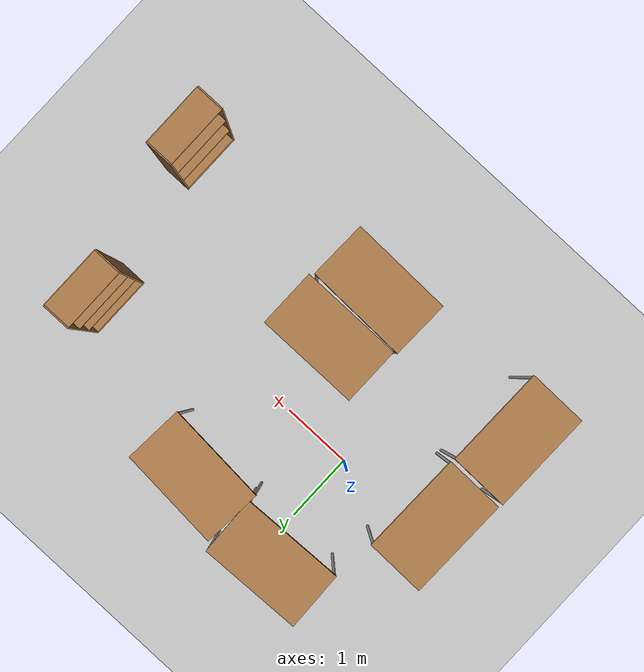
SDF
<sdf version="1.6">
 <world name="default">
  <model name="ground_plane">
   <static>1</static>
   <link name="link">
    <collision name="collision">
     <geometry><plane><normal>0 0 1</normal><size>100 100</size></plane></geometry>
     <surface><friction><ode><mu>100</mu><mu2>50</mu2></ode></friction></surface>
    </collision>
    <visual name="visual">
     <cast_shadows>0</cast_shadows>
     <geometry><plane><normal>0 0 1</normal><size>100 100</size></plane></geometry>
     <material>
      <script><uri>file://media/materials/scripts/gazebo.material</uri><name>Gazebo/Grey</name></script>
     </material>
    </visual>
   </link>
  </model>
  <model name="bookshelf_clone">
   <static>1</static>
   <link name="link">
    <inertial><mass>1</mass></inertial>
    <collision name="back">
     <pose>0 0.005 0.6 0 -0 0</pose>
     <geometry><box><size>0.9 0.01 1.2</size></box></geometry>
    </collision>
    <visual name="visual1">
     <pose>0 0.005 0.6 0 -0 0</pose>
     <geometry><box><size>0.9 0.01 1.2</size></box></geometry>
     <material>
      <script><uri>file://media/materials/scripts/gazebo.material</uri><name>Gazebo/Wood</name></script>
     </material>
    </visual>
    <collision name="left_side">
     <pose>0.45 -0.195 0.6 0 -0 0</pose>
     <geometry><box><size>0.02 0.4 1.2</size></box></geometry>
    </collision>
    <visual name="visual2">
     <pose>0.45 -0.195 0.6 0 -0 0</pose>
     <geometry><box><size>0.02 0.4 1.2</size></box></geometry>
     <material>
      <script><uri>file://media/materials/scripts/gazebo.material</uri><name>Gazebo/Wood</name></script>
     </material>
    </visual>
    <collision name="right_side">
     <pose>-0.45 -0.195 0.6 0 -0 0</pose>
     <geometry><box><size>0.02 0.4 1.2</size></box></geometry>
    </collision>
    <visual name="visual3">
     <pose>-0.45 -0.195 0.6 0 -0 0</pose>
     <geometry><box><size>0.02 0.4 1.2</size></box></geometry>
     <material>
      <script><uri>file://media/materials/scripts/gazebo.material</uri><name>Gazebo/Wood</name></script>
     </material>
    </visual>
    <collision name="bottom">
     <pose>0 -0.195 0.03 0 -0 0</pose>
     <geometry><box><size>0.88 0.4 0.06</size></box></geometry>
    </collision>
    <visual name="visual4">
     <pose>0 -0.195 0.03 0 -0 0</pose>
     <geometry><box><size>0.88 0.4 0.06</size></box></geometry>
     <material>
      <script><uri>file://media/materials/scripts/gazebo.material</uri><name>Gazebo/Wood</name></script>
     </material>
    </visual>
    <collision name="top">
     <pose>0 -0.195 1.19 0 -0 0</pose>
     <geometry><box><size>0.88 0.4 0.02</size></box></geometry>
    </collision>
    <visual name="visual5">
     <pose>0 -0.195 1.19 0 -0 0</pose>
     <geometry><box><size>0.88 0.4 0.02</size></box></geometry>
     <material>
      <script><uri>file://media/materials/scripts/gazebo.material</uri><name>Gazebo/Wood</name></script>
     </material>
    </visual>
    <collision name="low_shelf">
     <pose>0 -0.195 0.43 0 -0 0</pose>
     <geometry><box><size>0.88 0.4 0.02</size></box></geometry>
    </collision>
    <visual name="visual6">
     <pose>0 -0.195 0.43 0 -0 0</pose>
     <geometry><box><size>0.88 0.4 0.02</size></box></geometry>
     <material>
      <script><uri>file://media/materials/scripts/gazebo.material</uri><name>Gazebo/Wood</name></script>
     </material>
    </visual>
    <collision name="high_shelf">
     <pose>0 -0.195 0.8 0 -0 0</pose>
     <geometry><box><size>0.88 0.4 0.02</size></box></geometry>
    </collision>
    <visual name="visual7">
     <pose>0 -0.195 0.8 0 -0 0</pose>
     <geometry><box><size>0.88 0.4 0.02</size></box></geometry>
     <material>
      <script><uri>file://media/materials/scripts/gazebo.material</uri><name>Gazebo/Wood</name></script>
     </material>
    </visual>
   </link>
   <pose>4.43144 -1.72002 0 0 0 -1.56896</pose>
  </model>
  <model name="bookshelf_clone_clone_1">
   <static>1</static>
   <link name="link">
    <inertial><mass>1</mass></inertial>
    <collision name="back">
     <pose>0 0.005 0.6 0 -0 0</pose>
     <geometry><box><size>0.9 0.01 1.2</size></box></geometry>
    </collision>
    <visual name="visual1">
     <pose>0 0.005 0.6 0 -0 0</pose>
     <geometry><box><size>0.9 0.01 1.2</size></box></geometry>
     <material>
      <script><uri>file://media/materials/scripts/gazebo.material</uri><name>Gazebo/Wood</name></script>
     </material>
    </visual>
    <collision name="left_side">
     <pose>0.45 -0.195 0.6 0 -0 0</pose>
     <geometry><box><size>0.02 0.4 1.2</size></box></geometry>
    </collision>
    <visual name="visual2">
     <pose>0.45 -0.195 0.6 0 -0 0</pose>
     <geometry><box><size>0.02 0.4 1.2</size></box></geometry>
     <material>
      <script><uri>file://media/materials/scripts/gazebo.material</uri><name>Gazebo/Wood</name></script>
     </material>
    </visual>
    <collision name="right_side">
     <pose>-0.45 -0.195 0.6 0 -0 0</pose>
     <geometry><box><size>0.02 0.4 1.2</size></box></geometry>
    </collision>
    <visual name="visual3">
     <pose>-0.45 -0.195 0.6 0 -0 0</pose>
     <geometry><box><size>0.02 0.4 1.2</size></box></geometry>
     <material>
      <script><uri>file://media/materials/scripts/gazebo.material</uri><name>Gazebo/Wood</name></script>
     </material>
    </visual>
    <collision name="bottom">
     <pose>0 -0.195 0.03 0 -0 0</pose>
     <geometry><box><size>0.88 0.4 0.06</size></box></geometry>
    </collision>
    <visual name="visual4">
     <pose>0 -0.195 0.03 0 -0 0</pose>
     <geometry><box><size>0.88 0.4 0.06</size></box></geometry>
     <material>
      <script><uri>file://media/materials/scripts/gazebo.material</uri><name>Gazebo/Wood</name></script>
     </material>
    </visual>
    <collision name="top">
     <pose>0 -0.195 1.19 0 -0 0</pose>
     <geometry><box><size>0.88 0.4 0.02</size></box></geometry>
    </collision>
    <visual name="visual5">
     <pose>0 -0.195 1.19 0 -0 0</pose>
     <geometry><box><size>0.88 0.4 0.02</size></box></geometry>
     <material>
      <script><uri>file://media/materials/scripts/gazebo.material</uri><name>Gazebo/Wood</name></script>
     </material>
    </visual>
    <collision name="low_shelf">
     <pose>0 -0.195 0.43 0 -0 0</pose>
     <geometry><box><size>0.88 0.4 0.02</size></box></geometry>
    </collision>
    <visual name="visual6">
     <pose>0 -0.195 0.43 0 -0 0</pose>
     <geometry><box><size>0.88 0.4 0.02</size></box></geometry>
     <material>
      <script><uri>file://media/materials/scripts/gazebo.material</uri><name>Gazebo/Wood</name></script>
     </material>
    </visual>
    <collision name="high_shelf">
     <pose>0 -0.195 0.8 0 -0 0</pose>
     <geometry><box><size>0.88 0.4 0.02</size></box></geometry>
    </collision>
    <visual name="visual7">
     <pose>0 -0.195 0.8 0 -0 0</pose>
     <geometry><box><size>0.88 0.4 0.02</size></box></geometry>
     <material>
      <script><uri>file://media/materials/scripts/gazebo.material</uri><name>Gazebo/Wood</name></script>
     </material>
    </visual>
   </link>
   <pose>4.00855 0.531106 0 0 0 -1.56896</pose>
  </model>
  <model name="table_clone">
   <static>0</static>
   <link name="link">
    <collision name="surface">
     <pose>0 0 1 0 -0 0</pose>
     <geometry><box><size>1.5 0.8 0.03</size></box></geometry>
     <surface><friction><ode><mu>0.6</mu><mu2>0.6</mu2></ode></friction></surface>
    </collision>
    <visual name="visual1">
     <pose>0 0 1 0 -0 0</pose>
     <geometry><box><size>1.4 0.8 0.04</size></box></geometry>
     <material>
      <script><uri>file://media/materials/scripts/gazebo.material</uri><name>Gazebo/Wood</name></script>
     </material>
    </visual>
    <collision name="front_left_leg">
     <pose>0.68 0.38 0.5 0 -0 0</pose>
     <geometry><cylinder><radius>0.02</radius><length>1</length></cylinder></geometry>
    </collision>
    <visual name="front_left_leg">
     <pose>0.68 0.38 0.5 0 -0 0</pose>
     <geometry><cylinder><radius>0.02</radius><length>1</length></cylinder></geometry>
     <material>
      <script><uri>file://media/materials/scripts/gazebo.material</uri><name>Gazebo/Grey</name></script>
     </material>
    </visual>
    <collision name="front_right_leg">
     <pose>0.68 -0.38 0.5 0 -0 0</pose>
     <geometry><cylinder><radius>0.02</radius><length>1</length></cylinder></geometry>
    </collision>
    <visual name="front_right_leg">
     <pose>0.68 -0.38 0.5 0 -0 0</pose>
     <geometry><cylinder><radius>0.02</radius><length>1</length></cylinder></geometry>
     <material>
      <script><uri>file://media/materials/scripts/gazebo.material</uri><name>Gazebo/Grey</name></script>
     </material>
    </visual>
    <collision name="back_right_leg">
     <pose>-0.68 -0.38 0.5 0 -0 0</pose>
     <geometry><cylinder><radius>0.02</radius><length>1</length></cylinder></geometry>
    </collision>
    <visual name="back_right_leg">
     <pose>-0.68 -0.38 0.5 0 -0 0</pose>
     <geometry><cylinder><radius>0.02</radius><length>1</length></cylinder></geometry>
     <material>
      <script><uri>file://media/materials/scripts/gazebo.material</uri><name>Gazebo/Grey</name></script>
     </material>
    </visual>
    <collision name="back_left_leg">
     <pose>-0.68 0.38 0.5 0 -0 0</pose>
     <geometry><cylinder><radius>0.02</radius><length>1</length></cylinder></geometry>
    </collision>
    <visual name="back_left_leg">
     <pose>-0.68 0.38 0.5 0 -0 0</pose>
     <geometry><cylinder><radius>0.02</radius><length>1</length></cylinder></geometry>
     <material>
      <script><uri>file://media/materials/scripts/gazebo.material</uri><name>Gazebo/Grey</name></script>
     </material>
    </visual>
    <inertial>
     <inertia><ixx>1</ixx><ixy>0</ixy><ixz>0</ixz><iyy>1</iyy><iyz>0</iyz><izz>1</izz></inertia>
     <mass>1</mass>
    </inertial>
   </link>
   <pose>-0.075508 1.43954 4e-06 -0 7e-06 0.034476</pose>
  </model>
  <model name="table_clone_clone">
   <static>0</static>
   <link name="link">
    <collision name="surface">
     <pose>0 0 1 0 -0 0</pose>
     <geometry><box><size>1.5 0.8 0.03</size></box></geometry>
     <surface><friction><ode><mu>0.6</mu><mu2>0.6</mu2></ode></friction></surface>
    </collision>
    <visual name="visual1">
     <pose>0 0 1 0 -0 0</pose>
     <geometry><box><size>1.4 0.8 0.04</size></box></geometry>
     <material>
      <script><uri>file://media/materials/scripts/gazebo.material</uri><name>Gazebo/Wood</name></script>
     </material>
    </visual>
    <collision name="front_left_leg">
     <pose>0.68 0.38 0.5 0 -0 0</pose>
     <geometry><cylinder><radius>0.02</radius><length>1</length></cylinder></geometry>
    </collision>
    <visual name="front_left_leg">
     <pose>0.68 0.38 0.5 0 -0 0</pose>
     <geometry><cylinder><radius>0.02</radius><length>1</length></cylinder></geometry>
     <material>
      <script><uri>file://media/materials/scripts/gazebo.material</uri><name>Gazebo/Grey</name></script>
     </material>
    </visual>
    <collision name="front_right_leg">
     <pose>0.68 -0.38 0.5 0 -0 0</pose>
     <geometry><cylinder><radius>0.02</radius><length>1</length></cylinder></geometry>
    </collision>
    <visual name="front_right_leg">
     <pose>0.68 -0.38 0.5 0 -0 0</pose>
     <geometry><cylinder><radius>0.02</radius><length>1</length></cylinder></geometry>
     <material>
      <script><uri>file://media/materials/scripts/gazebo.material</uri><name>Gazebo/Grey</name></script>
     </material>
    </visual>
    <collision name="back_right_leg">
     <pose>-0.68 -0.38 0.5 0 -0 0</pose>
     <geometry><cylinder><radius>0.02</radius><length>1</length></cylinder></geometry>
    </collision>
    <visual name="back_right_leg">
     <pose>-0.68 -0.38 0.5 0 -0 0</pose>
     <geometry><cylinder><radius>0.02</radius><length>1</length></cylinder></geometry>
     <material>
      <script><uri>file://media/materials/scripts/gazebo.material</uri><name>Gazebo/Grey</name></script>
     </material>
    </visual>
    <collision name="back_left_leg">
     <pose>-0.68 0.38 0.5 0 -0 0</pose>
     <geometry><cylinder><radius>0.02</radius><length>1</length></cylinder></geometry>
    </collision>
    <visual name="back_left_leg">
     <pose>-0.68 0.38 0.5 0 -0 0</pose>
     <geometry><cylinder><radius>0.02</radius><length>1</length></cylinder></geometry>
     <material>
      <script><uri>file://media/materials/scripts/gazebo.material</uri><name>Gazebo/Grey</name></script>
     </material>
    </visual>
    <inertial>
     <inertia><ixx>1</ixx><ixy>0</ixy><ixz>0</ixz><iyy>1</iyy><iyz>0</iyz><izz>1</izz></inertia>
     <mass>1</mass>
    </inertial>
   </link>
   <pose>1.31764 1.3076 0.015856 3e-06 0.022652 -0.063815</pose>
  </model>
  <model name="table_clone_clone_0">
   <static>0</static>
   <link name="link">
    <collision name="surface">
     <pose>0 0 1 0 -0 0</pose>
     <geometry><box><size>1.5 0.8 0.03</size></box></geometry>
     <surface><friction><ode><mu>0.6</mu><mu2>0.6</mu2></ode></friction></surface>
    </collision>
    <visual name="visual1">
     <pose>0 0 1 0 -0 0</pose>
     <geometry><box><size>1.4 0.8 0.04</size></box></geometry>
     <material>
      <script><uri>file://media/materials/scripts/gazebo.material</uri><name>Gazebo/Wood</name></script>
     </material>
    </visual>
    <collision name="front_left_leg">
     <pose>0.68 0.38 0.5 0 -0 0</pose>
     <geometry><cylinder><radius>0.02</radius><length>1</length></cylinder></geometry>
    </collision>
    <visual name="front_left_leg">
     <pose>0.68 0.38 0.5 0 -0 0</pose>
     <geometry><cylinder><radius>0.02</radius><length>1</length></cylinder></geometry>
     <material>
      <script><uri>file://media/materials/scripts/gazebo.material</uri><name>Gazebo/Grey</name></script>
     </material>
    </visual>
    <collision name="front_right_leg">
     <pose>0.68 -0.38 0.5 0 -0 0</pose>
     <geometry><cylinder><radius>0.02</radius><length>1</length></cylinder></geometry>
    </collision>
    <visual name="front_right_leg">
     <pose>0.68 -0.38 0.5 0 -0 0</pose>
     <geometry><cylinder><radius>0.02</radius><length>1</length></cylinder></geometry>
     <material>
      <script><uri>file://media/materials/scripts/gazebo.material</uri><name>Gazebo/Grey</name></script>
     </material>
    </visual>
    <collision name="back_right_leg">
     <pose>-0.68 -0.38 0.5 0 -0 0</pose>
     <geometry><cylinder><radius>0.02</radius><length>1</length></cylinder></geometry>
    </collision>
    <visual name="back_right_leg">
     <pose>-0.68 -0.38 0.5 0 -0 0</pose>
     <geometry><cylinder><radius>0.02</radius><length>1</length></cylinder></geometry>
     <material>
      <script><uri>file://media/materials/scripts/gazebo.material</uri><name>Gazebo/Grey</name></script>
     </material>
    </visual>
    <collision name="back_left_leg">
     <pose>-0.68 0.38 0.5 0 -0 0</pose>
     <geometry><cylinder><radius>0.02</radius><length>1</length></cylinder></geometry>
    </collision>
    <visual name="back_left_leg">
     <pose>-0.68 0.38 0.5 0 -0 0</pose>
     <geometry><cylinder><radius>0.02</radius><length>1</length></cylinder></geometry>
     <material>
      <script><uri>file://media/materials/scripts/gazebo.material</uri><name>Gazebo/Grey</name></script>
     </material>
    </visual>
    <inertial>
     <inertia><ixx>1</ixx><ixy>0</ixy><ixz>0</ixz><iyy>1</iyy><iyz>0</iyz><izz>1</izz></inertia>
     <mass>1</mass>
    </inertial>
   </link>
   <pose>1.27065 -1.04815 -1e-05 0 -0 8.8e-05</pose>
  </model>
  <model name="table_clone_clone_1">
   <static>0</static>
   <link name="link">
    <collision name="surface">
     <pose>0 0 1 0 -0 0</pose>
     <geometry><box><size>1.5 0.8 0.03</size></box></geometry>
     <surface><friction><ode><mu>0.6</mu><mu2>0.6</mu2></ode></friction></surface>
    </collision>
    <visual name="visual1">
     <pose>0 0 1 0 -0 0</pose>
     <geometry><box><size>1.4 0.8 0.04</size></box></geometry>
     <material>
      <script><uri>file://media/materials/scripts/gazebo.material</uri><name>Gazebo/Wood</name></script>
     </material>
    </visual>
    <collision name="front_left_leg">
     <pose>0.68 0.38 0.5 0 -0 0</pose>
     <geometry><cylinder><radius>0.02</radius><length>1</length></cylinder></geometry>
    </collision>
    <visual name="front_left_leg">
     <pose>0.68 0.38 0.5 0 -0 0</pose>
     <geometry><cylinder><radius>0.02</radius><length>1</length></cylinder></geometry>
     <material>
      <script><uri>file://media/materials/scripts/gazebo.material</uri><name>Gazebo/Grey</name></script>
     </material>
    </visual>
    <collision name="front_right_leg">
     <pose>0.68 -0.38 0.5 0 -0 0</pose>
     <geometry><cylinder><radius>0.02</radius><length>1</length></cylinder></geometry>
    </collision>
    <visual name="front_right_leg">
     <pose>0.68 -0.38 0.5 0 -0 0</pose>
     <geometry><cylinder><radius>0.02</radius><length>1</length></cylinder></geometry>
     <material>
      <script><uri>file://media/materials/scripts/gazebo.material</uri><name>Gazebo/Grey</name></script>
     </material>
    </visual>
    <collision name="back_right_leg">
     <pose>-0.68 -0.38 0.5 0 -0 0</pose>
     <geometry><cylinder><radius>0.02</radius><length>1</length></cylinder></geometry>
    </collision>
    <visual name="back_right_leg">
     <pose>-0.68 -0.38 0.5 0 -0 0</pose>
     <geometry><cylinder><radius>0.02</radius><length>1</length></cylinder></geometry>
     <material>
      <script><uri>file://media/materials/scripts/gazebo.material</uri><name>Gazebo/Grey</name></script>
     </material>
    </visual>
    <collision name="back_left_leg">
     <pose>-0.68 0.38 0.5 0 -0 0</pose>
     <geometry><cylinder><radius>0.02</radius><length>1</length></cylinder></geometry>
    </collision>
    <visual name="back_left_leg">
     <pose>-0.68 0.38 0.5 0 -0 0</pose>
     <geometry><cylinder><radius>0.02</radius><length>1</length></cylinder></geometry>
     <material>
      <script><uri>file://media/materials/scripts/gazebo.material</uri><name>Gazebo/Grey</name></script>
     </material>
    </visual>
    <inertial>
     <inertia><ixx>1</ixx><ixy>0</ixy><ixz>0</ixz><iyy>1</iyy><iyz>0</iyz><izz>1</izz></inertia>
     <mass>1</mass>
    </inertial>
   </link>
   <pose>1.21648 -1.87759 -2e-06 -2e-06 2e-06 -0.022694</pose>
  </model>
  <model name="table_clone_clone_2">
   <static>0</static>
   <link name="link">
    <collision name="surface">
     <pose>0 0 1 0 -0 0</pose>
     <geometry><box><size>1.5 0.8 0.03</size></box></geometry>
     <surface><friction><ode><mu>0.6</mu><mu2>0.6</mu2></ode></friction></surface>
    </collision>
    <visual name="visual1">
     <pose>0 0 1 0 -0 0</pose>
     <geometry><box><size>1.4 0.8 0.04</size></box></geometry>
     <material>
      <script><uri>file://media/materials/scripts/gazebo.material</uri><name>Gazebo/Wood</name></script>
     </material>
    </visual>
    <collision name="front_left_leg">
     <pose>0.68 0.38 0.5 0 -0 0</pose>
     <geometry><cylinder><radius>0.02</radius><length>1</length></cylinder></geometry>
    </collision>
    <visual name="front_left_leg">
     <pose>0.68 0.38 0.5 0 -0 0</pose>
     <geometry><cylinder><radius>0.02</radius><length>1</length></cylinder></geometry>
     <material>
      <script><uri>file://media/materials/scripts/gazebo.material</uri><name>Gazebo/Grey</name></script>
     </material>
    </visual>
    <collision name="front_right_leg">
     <pose>0.68 -0.38 0.5 0 -0 0</pose>
     <geometry><cylinder><radius>0.02</radius><length>1</length></cylinder></geometry>
    </collision>
    <visual name="front_right_leg">
     <pose>0.68 -0.38 0.5 0 -0 0</pose>
     <geometry><cylinder><radius>0.02</radius><length>1</length></cylinder></geometry>
     <material>
      <script><uri>file://media/materials/scripts/gazebo.material</uri><name>Gazebo/Grey</name></script>
     </material>
    </visual>
    <collision name="back_right_leg">
     <pose>-0.68 -0.38 0.5 0 -0 0</pose>
     <geometry><cylinder><radius>0.02</radius><length>1</length></cylinder></geometry>
    </collision>
    <visual name="back_right_leg">
     <pose>-0.68 -0.38 0.5 0 -0 0</pose>
     <geometry><cylinder><radius>0.02</radius><length>1</length></cylinder></geometry>
     <material>
      <script><uri>file://media/materials/scripts/gazebo.material</uri><name>Gazebo/Grey</name></script>
     </material>
    </visual>
    <collision name="back_left_leg">
     <pose>-0.68 0.38 0.5 0 -0 0</pose>
     <geometry><cylinder><radius>0.02</radius><length>1</length></cylinder></geometry>
    </collision>
    <visual name="back_left_leg">
     <pose>-0.68 0.38 0.5 0 -0 0</pose>
     <geometry><cylinder><radius>0.02</radius><length>1</length></cylinder></geometry>
     <material>
      <script><uri>file://media/materials/scripts/gazebo.material</uri><name>Gazebo/Grey</name></script>
     </material>
    </visual>
    <inertial>
     <inertia><ixx>1</ixx><ixy>0</ixy><ixz>0</ixz><iyy>1</iyy><iyz>0</iyz><izz>1</izz></inertia>
     <mass>1</mass>
    </inertial>
   </link>
   <pose>-1.25433 -1.66835 0.015104 0 -0.021585 1.55371</pose>
  </model>
  <model name="table_clone_clone_2_clone">
   <static>0</static>
   <link name="link">
    <collision name="surface">
     <pose>0 0 1 0 -0 0</pose>
     <geometry><box><size>1.5 0.8 0.03</size></box></geometry>
     <surface><friction><ode><mu>0.6</mu><mu2>0.6</mu2></ode></friction></surface>
    </collision>
    <visual name="visual1">
     <pose>0 0 1 0 -0 0</pose>
     <geometry><box><size>1.4 0.8 0.04</size></box></geometry>
     <material>
      <script><uri>file://media/materials/scripts/gazebo.material</uri><name>Gazebo/Wood</name></script>
     </material>
    </visual>
    <collision name="front_left_leg">
     <pose>0.68 0.38 0.5 0 -0 0</pose>
     <geometry><cylinder><radius>0.02</radius><length>1</length></cylinder></geometry>
    </collision>
    <visual name="front_left_leg">
     <pose>0.68 0.38 0.5 0 -0 0</pose>
     <geometry><cylinder><radius>0.02</radius><length>1</length></cylinder></geometry>
     <material>
      <script><uri>file://media/materials/scripts/gazebo.material</uri><name>Gazebo/Grey</name></script>
     </material>
    </visual>
    <collision name="front_right_leg">
     <pose>0.68 -0.38 0.5 0 -0 0</pose>
     <geometry><cylinder><radius>0.02</radius><length>1</length></cylinder></geometry>
    </collision>
    <visual name="front_right_leg">
     <pose>0.68 -0.38 0.5 0 -0 0</pose>
     <geometry><cylinder><radius>0.02</radius><length>1</length></cylinder></geometry>
     <material>
      <script><uri>file://media/materials/scripts/gazebo.material</uri><name>Gazebo/Grey</name></script>
     </material>
    </visual>
    <collision name="back_right_leg">
     <pose>-0.68 -0.38 0.5 0 -0 0</pose>
     <geometry><cylinder><radius>0.02</radius><length>1</length></cylinder></geometry>
    </collision>
    <visual name="back_right_leg">
     <pose>-0.68 -0.38 0.5 0 -0 0</pose>
     <geometry><cylinder><radius>0.02</radius><length>1</length></cylinder></geometry>
     <material>
      <script><uri>file://media/materials/scripts/gazebo.material</uri><name>Gazebo/Grey</name></script>
     </material>
    </visual>
    <collision name="back_left_leg">
     <pose>-0.68 0.38 0.5 0 -0 0</pose>
     <geometry><cylinder><radius>0.02</radius><length>1</length></cylinder></geometry>
    </collision>
    <visual name="back_left_leg">
     <pose>-0.68 0.38 0.5 0 -0 0</pose>
     <geometry><cylinder><radius>0.02</radius><length>1</length></cylinder></geometry>
     <material>
      <script><uri>file://media/materials/scripts/gazebo.material</uri><name>Gazebo/Grey</name></script>
     </material>
    </visual>
    <inertial>
     <inertia><ixx>1</ixx><ixy>0</ixy><ixz>0</ixz><iyy>1</iyy><iyz>0</iyz><izz>1</izz></inertia>
     <mass>1</mass>
    </inertial>
   </link>
   <pose>-1.22279 -0.239453 -1e-06 -0 -2e-06 1.55371</pose>
  </model>
 </world>
</sdf>
